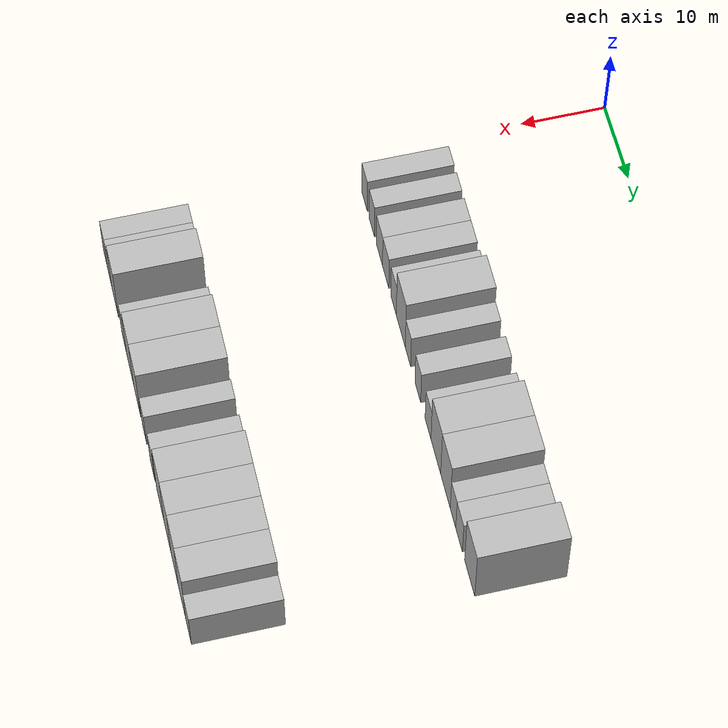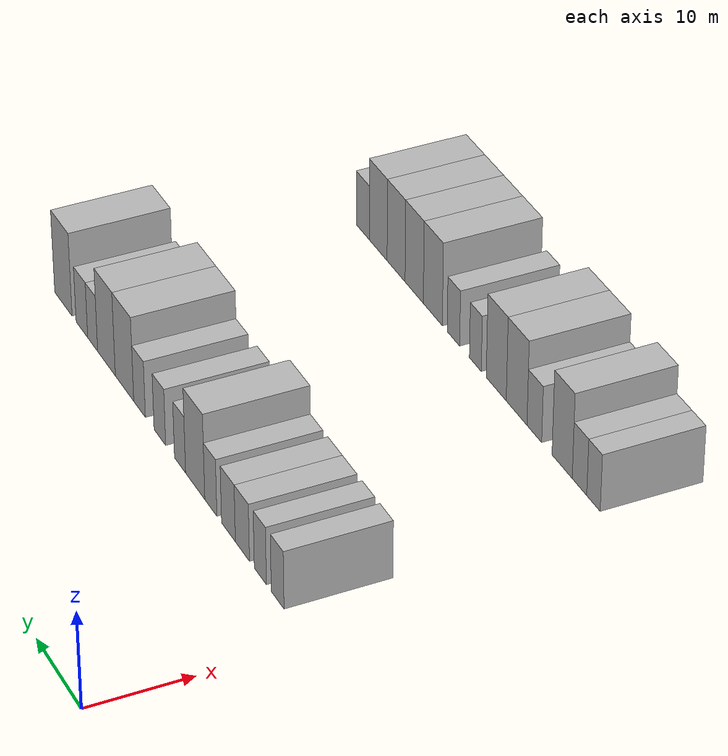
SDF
<sdf version="1.6">
 <world name="default">
  <model name="building_54">
   <static>1</static>
   <pose>25.0000 6.2718 0 0.000000 0.000000 0.000000</pose>
   <link name="link">
    <pose>0 0 3.00 0 0 0</pose>
    <collision name="collision"><geometry><box><size>10.0000 2.6216 6.0000</size></box></geometry></collision>
    <visual name="visual">
     <cast_shadows>0</cast_shadows>
     <geometry><box><size>10.0000 2.6216 6.0000</size></box></geometry>
     <material>
      <script>
       <uri>model://HANNAS_wall/materials/scripts</uri>
       <uri>model://HANNAS_wall/materials/textures</uri>
       <name>vrc/HANNAS_wall</name>
      </script>
     </material>
    </visual>
   </link>
  </model>
  <model name="building_55">
   <static>1</static>
   <pose>25.0000 9.8416 0 0.000000 0.000000 0.000000</pose>
   <link name="link">
    <pose>0 0 3.00 0 0 0</pose>
    <collision name="collision"><geometry><box><size>10.0000 2.5180 6.0000</size></box></geometry></collision>
    <visual name="visual">
     <cast_shadows>0</cast_shadows>
     <geometry><box><size>10.0000 2.5180 6.0000</size></box></geometry>
     <material>
      <script>
       <uri>model://HANNAS_wall/materials/scripts</uri>
       <uri>model://HANNAS_wall/materials/textures</uri>
       <name>vrc/HANNAS_wall</name>
      </script>
     </material>
    </visual>
   </link>
  </model>
  <model name="building_56">
   <static>1</static>
   <pose>25.0000 13.5956 0 0.000000 0.000000 0.000000</pose>
   <link name="link">
    <pose>0 0 3.00 0 0 0</pose>
    <collision name="collision"><geometry><box><size>10.0000 2.9900 6.0000</size></box></geometry></collision>
    <visual name="visual">
     <cast_shadows>0</cast_shadows>
     <geometry><box><size>10.0000 2.9900 6.0000</size></box></geometry>
     <material>
      <script>
       <uri>model://HANNAS_wall/materials/scripts</uri>
       <uri>model://HANNAS_wall/materials/textures</uri>
       <name>vrc/HANNAS_wall</name>
      </script>
     </material>
    </visual>
   </link>
  </model>
  <model name="building_57">
   <static>1</static>
   <pose>25.0000 16.5697 0 0.000000 0.000000 0.000000</pose>
   <link name="link">
    <pose>0 0 3.00 0 0 0</pose>
    <collision name="collision"><geometry><box><size>10.0000 2.9582 6.0000</size></box></geometry></collision>
    <visual name="visual">
     <cast_shadows>0</cast_shadows>
     <geometry><box><size>10.0000 2.9582 6.0000</size></box></geometry>
     <material>
      <script>
       <uri>model://HANNAS_wall/materials/scripts</uri>
       <uri>model://HANNAS_wall/materials/textures</uri>
       <name>vrc/HANNAS_wall</name>
      </script>
     </material>
    </visual>
   </link>
  </model>
  <model name="building_58">
   <static>1</static>
   <pose>25.0000 20.3652 0 0.000000 0.000000 0.000000</pose>
   <link name="link">
    <pose>0 0 3.00 0 0 0</pose>
    <collision name="collision"><geometry><box><size>10.0000 2.6328 6.0000</size></box></geometry></collision>
    <visual name="visual">
     <cast_shadows>0</cast_shadows>
     <geometry><box><size>10.0000 2.6328 6.0000</size></box></geometry>
     <material>
      <script>
       <uri>model://HANNAS_wall/materials/scripts</uri>
       <uri>model://HANNAS_wall/materials/textures</uri>
       <name>vrc/HANNAS_wall</name>
      </script>
     </material>
    </visual>
   </link>
  </model>
  <model name="building_59">
   <static>1</static>
   <pose>25.0000 23.7992 0 0.000000 0.000000 0.000000</pose>
   <link name="link">
    <pose>0 0 4.50 0 0 0</pose>
    <collision name="collision"><geometry><box><size>10.0000 4.2353 9.0000</size></box></geometry></collision>
    <visual name="visual">
     <cast_shadows>0</cast_shadows>
     <geometry><box><size>10.0000 4.2353 9.0000</size></box></geometry>
     <material>
      <script>
       <uri>model://HANNAS_wall/materials/scripts</uri>
       <uri>model://HANNAS_wall/materials/textures</uri>
       <name>vrc/HANNAS_wall</name>
      </script>
     </material>
    </visual>
   </link>
  </model>
  <model name="building_60">
   <static>1</static>
   <pose>25.0000 27.1506 0 0.000000 0.000000 0.000000</pose>
   <link name="link">
    <pose>0 0 3.00 0 0 0</pose>
    <collision name="collision"><geometry><box><size>10.0000 2.4674 6.0000</size></box></geometry></collision>
    <visual name="visual">
     <cast_shadows>0</cast_shadows>
     <geometry><box><size>10.0000 2.4674 6.0000</size></box></geometry>
     <material>
      <script>
       <uri>model://HANNAS_wall/materials/scripts</uri>
       <uri>model://HANNAS_wall/materials/textures</uri>
       <name>vrc/HANNAS_wall</name>
      </script>
     </material>
    </visual>
   </link>
  </model>
  <model name="building_61">
   <static>1</static>
   <pose>25.0000 31.7024 0 0.000000 0.000000 0.000000</pose>
   <link name="link">
    <pose>0 0 3.00 0 0 0</pose>
    <collision name="collision"><geometry><box><size>10.0000 2.6361 6.0000</size></box></geometry></collision>
    <visual name="visual">
     <cast_shadows>0</cast_shadows>
     <geometry><box><size>10.0000 2.6361 6.0000</size></box></geometry>
     <material>
      <script>
       <uri>model://HANNAS_wall/materials/scripts</uri>
       <uri>model://HANNAS_wall/materials/textures</uri>
       <name>vrc/HANNAS_wall</name>
      </script>
     </material>
    </visual>
   </link>
  </model>
  <model name="building_62">
   <static>1</static>
   <pose>25.0000 36.3706 0 0.000000 0.000000 0.000000</pose>
   <link name="link">
    <pose>0 0 3.00 0 0 0</pose>
    <collision name="collision"><geometry><box><size>10.0000 2.7004 6.0000</size></box></geometry></collision>
    <visual name="visual">
     <cast_shadows>0</cast_shadows>
     <geometry><box><size>10.0000 2.7004 6.0000</size></box></geometry>
     <material>
      <script>
       <uri>model://HANNAS_wall/materials/scripts</uri>
       <uri>model://HANNAS_wall/materials/textures</uri>
       <name>vrc/HANNAS_wall</name>
      </script>
     </material>
    </visual>
   </link>
  </model>
  <model name="building_63">
   <static>1</static>
   <pose>25.0000 39.8897 0 0.000000 0.000000 0.000000</pose>
   <link name="link">
    <pose>0 0 4.50 0 0 0</pose>
    <collision name="collision"><geometry><box><size>10.0000 4.3378 9.0000</size></box></geometry></collision>
    <visual name="visual">
     <cast_shadows>0</cast_shadows>
     <geometry><box><size>10.0000 4.3378 9.0000</size></box></geometry>
     <material>
      <script>
       <uri>model://HANNAS_wall/materials/scripts</uri>
       <uri>model://HANNAS_wall/materials/textures</uri>
       <name>vrc/HANNAS_wall</name>
      </script>
     </material>
    </visual>
   </link>
  </model>
  <model name="building_64">
   <static>1</static>
   <pose>25.0000 44.1730 0 0.000000 0.000000 0.000000</pose>
   <link name="link">
    <pose>0 0 4.50 0 0 0</pose>
    <collision name="collision"><geometry><box><size>10.0000 4.2289 9.0000</size></box></geometry></collision>
    <visual name="visual">
     <cast_shadows>0</cast_shadows>
     <geometry><box><size>10.0000 4.2289 9.0000</size></box></geometry>
     <material>
      <script>
       <uri>model://HANNAS_wall/materials/scripts</uri>
       <uri>model://HANNAS_wall/materials/textures</uri>
       <name>vrc/HANNAS_wall</name>
      </script>
     </material>
    </visual>
   </link>
  </model>
  <model name="building_65">
   <static>1</static>
   <pose>25.0000 47.4939 0 0.000000 0.000000 0.000000</pose>
   <link name="link">
    <pose>0 0 3.00 0 0 0</pose>
    <collision name="collision"><geometry><box><size>10.0000 2.4128 6.0000</size></box></geometry></collision>
    <visual name="visual">
     <cast_shadows>0</cast_shadows>
     <geometry><box><size>10.0000 2.4128 6.0000</size></box></geometry>
     <material>
      <script>
       <uri>model://HANNAS_wall/materials/scripts</uri>
       <uri>model://HANNAS_wall/materials/textures</uri>
       <name>vrc/HANNAS_wall</name>
      </script>
     </material>
    </visual>
   </link>
  </model>
  <model name="building_66">
   <static>1</static>
   <pose>25.0000 50.1245 0 0.000000 0.000000 0.000000</pose>
   <link name="link">
    <pose>0 0 3.00 0 0 0</pose>
    <collision name="collision"><geometry><box><size>10.0000 2.8485 6.0000</size></box></geometry></collision>
    <visual name="visual">
     <cast_shadows>0</cast_shadows>
     <geometry><box><size>10.0000 2.8485 6.0000</size></box></geometry>
     <material>
      <script>
       <uri>model://HANNAS_wall/materials/scripts</uri>
       <uri>model://HANNAS_wall/materials/textures</uri>
       <name>vrc/HANNAS_wall</name>
      </script>
     </material>
    </visual>
   </link>
  </model>
  <model name="building_67">
   <static>1</static>
   <pose>25.0000 54.7061 0 0.000000 0.000000 0.000000</pose>
   <link name="link">
    <pose>0 0 4.50 0 0 0</pose>
    <collision name="collision"><geometry><box><size>10.0000 4.3147 9.0000</size></box></geometry></collision>
    <visual name="visual">
     <cast_shadows>0</cast_shadows>
     <geometry><box><size>10.0000 4.3147 9.0000</size></box></geometry>
     <material>
      <script>
       <uri>model://HANNAS_wall/materials/scripts</uri>
       <uri>model://HANNAS_wall/materials/textures</uri>
       <name>vrc/HANNAS_wall</name>
      </script>
     </material>
    </visual>
   </link>
  </model>
  <model name="building_167">
   <static>1</static>
   <pose>55.0000 7.0812 0 0.000000 0.000000 0.000000</pose>
   <link name="link">
    <pose>0 0 3.00 0 0 0</pose>
    <collision name="collision"><geometry><box><size>10.0000 2.5024 6.0000</size></box></geometry></collision>
    <visual name="visual">
     <cast_shadows>0</cast_shadows>
     <geometry><box><size>10.0000 2.5024 6.0000</size></box></geometry>
     <material>
      <script>
       <uri>model://HANNAS_wall/materials/scripts</uri>
       <uri>model://HANNAS_wall/materials/textures</uri>
       <name>vrc/HANNAS_wall</name>
      </script>
     </material>
    </visual>
   </link>
  </model>
  <model name="building_168">
   <static>1</static>
   <pose>55.0000 9.6940 0 0.000000 0.000000 0.000000</pose>
   <link name="link">
    <pose>0 0 3.00 0 0 0</pose>
    <collision name="collision"><geometry><box><size>10.0000 2.7231 6.0000</size></box></geometry></collision>
    <visual name="visual">
     <cast_shadows>0</cast_shadows>
     <geometry><box><size>10.0000 2.7231 6.0000</size></box></geometry>
     <material>
      <script>
       <uri>model://HANNAS_wall/materials/scripts</uri>
       <uri>model://HANNAS_wall/materials/textures</uri>
       <name>vrc/HANNAS_wall</name>
      </script>
     </material>
    </visual>
   </link>
  </model>
  <model name="building_169">
   <static>1</static>
   <pose>55.0000 12.9704 0 0.000000 0.000000 0.000000</pose>
   <link name="link">
    <pose>0 0 4.50 0 0 0</pose>
    <collision name="collision"><geometry><box><size>10.0000 3.8297 9.0000</size></box></geometry></collision>
    <visual name="visual">
     <cast_shadows>0</cast_shadows>
     <geometry><box><size>10.0000 3.8297 9.0000</size></box></geometry>
     <material>
      <script>
       <uri>model://HANNAS_wall/materials/scripts</uri>
       <uri>model://HANNAS_wall/materials/textures</uri>
       <name>vrc/HANNAS_wall</name>
      </script>
     </material>
    </visual>
   </link>
  </model>
  <model name="building_170">
   <static>1</static>
   <pose>55.0000 18.3122 0 0.000000 0.000000 0.000000</pose>
   <link name="link">
    <pose>0 0 3.00 0 0 0</pose>
    <collision name="collision"><geometry><box><size>10.0000 2.8538 6.0000</size></box></geometry></collision>
    <visual name="visual">
     <cast_shadows>0</cast_shadows>
     <geometry><box><size>10.0000 2.8538 6.0000</size></box></geometry>
     <material>
      <script>
       <uri>model://HANNAS_wall/materials/scripts</uri>
       <uri>model://HANNAS_wall/materials/textures</uri>
       <name>vrc/HANNAS_wall</name>
      </script>
     </material>
    </visual>
   </link>
  </model>
  <model name="building_171">
   <static>1</static>
   <pose>55.0000 21.7813 0 0.000000 0.000000 0.000000</pose>
   <link name="link">
    <pose>0 0 4.50 0 0 0</pose>
    <collision name="collision"><geometry><box><size>10.0000 4.0845 9.0000</size></box></geometry></collision>
    <visual name="visual">
     <cast_shadows>0</cast_shadows>
     <geometry><box><size>10.0000 4.0845 9.0000</size></box></geometry>
     <material>
      <script>
       <uri>model://HANNAS_wall/materials/scripts</uri>
       <uri>model://HANNAS_wall/materials/textures</uri>
       <name>vrc/HANNAS_wall</name>
      </script>
     </material>
    </visual>
   </link>
  </model>
  <model name="building_172">
   <static>1</static>
   <pose>55.0000 25.8272 0 0.000000 0.000000 0.000000</pose>
   <link name="link">
    <pose>0 0 4.50 0 0 0</pose>
    <collision name="collision"><geometry><box><size>10.0000 4.0073 9.0000</size></box></geometry></collision>
    <visual name="visual">
     <cast_shadows>0</cast_shadows>
     <geometry><box><size>10.0000 4.0073 9.0000</size></box></geometry>
     <material>
      <script>
       <uri>model://HANNAS_wall/materials/scripts</uri>
       <uri>model://HANNAS_wall/materials/textures</uri>
       <name>vrc/HANNAS_wall</name>
      </script>
     </material>
    </visual>
   </link>
  </model>
  <model name="building_173">
   <static>1</static>
   <pose>55.0000 30.0411 0 0.000000 0.000000 0.000000</pose>
   <link name="link">
    <pose>0 0 3.00 0 0 0</pose>
    <collision name="collision"><geometry><box><size>10.0000 2.4204 6.0000</size></box></geometry></collision>
    <visual name="visual">
     <cast_shadows>0</cast_shadows>
     <geometry><box><size>10.0000 2.4204 6.0000</size></box></geometry>
     <material>
      <script>
       <uri>model://HANNAS_wall/materials/scripts</uri>
       <uri>model://HANNAS_wall/materials/textures</uri>
       <name>vrc/HANNAS_wall</name>
      </script>
     </material>
    </visual>
   </link>
  </model>
  <model name="building_174">
   <static>1</static>
   <pose>55.0000 34.5449 0 0.000000 0.000000 0.000000</pose>
   <link name="link">
    <pose>0 0 3.00 0 0 0</pose>
    <collision name="collision"><geometry><box><size>10.0000 2.5872 6.0000</size></box></geometry></collision>
    <visual name="visual">
     <cast_shadows>0</cast_shadows>
     <geometry><box><size>10.0000 2.5872 6.0000</size></box></geometry>
     <material>
      <script>
       <uri>model://HANNAS_wall/materials/scripts</uri>
       <uri>model://HANNAS_wall/materials/textures</uri>
       <name>vrc/HANNAS_wall</name>
      </script>
     </material>
    </visual>
   </link>
  </model>
  <model name="building_175">
   <static>1</static>
   <pose>55.0000 38.8420 0 0.000000 0.000000 0.000000</pose>
   <link name="link">
    <pose>0 0 4.50 0 0 0</pose>
    <collision name="collision"><geometry><box><size>10.0000 4.0071 9.0000</size></box></geometry></collision>
    <visual name="visual">
     <cast_shadows>0</cast_shadows>
     <geometry><box><size>10.0000 4.0071 9.0000</size></box></geometry>
     <material>
      <script>
       <uri>model://HANNAS_wall/materials/scripts</uri>
       <uri>model://HANNAS_wall/materials/textures</uri>
       <name>vrc/HANNAS_wall</name>
      </script>
     </material>
    </visual>
   </link>
  </model>
  <model name="building_176">
   <static>1</static>
   <pose>55.0000 42.8080 0 0.000000 0.000000 0.000000</pose>
   <link name="link">
    <pose>0 0 4.50 0 0 0</pose>
    <collision name="collision"><geometry><box><size>10.0000 3.9250 9.0000</size></box></geometry></collision>
    <visual name="visual">
     <cast_shadows>0</cast_shadows>
     <geometry><box><size>10.0000 3.9250 9.0000</size></box></geometry>
     <material>
      <script>
       <uri>model://HANNAS_wall/materials/scripts</uri>
       <uri>model://HANNAS_wall/materials/textures</uri>
       <name>vrc/HANNAS_wall</name>
      </script>
     </material>
    </visual>
   </link>
  </model>
  <model name="building_177">
   <static>1</static>
   <pose>55.0000 46.7187 0 0.000000 0.000000 0.000000</pose>
   <link name="link">
    <pose>0 0 4.50 0 0 0</pose>
    <collision name="collision"><geometry><box><size>10.0000 3.8964 9.0000</size></box></geometry></collision>
    <visual name="visual">
     <cast_shadows>0</cast_shadows>
     <geometry><box><size>10.0000 3.8964 9.0000</size></box></geometry>
     <material>
      <script>
       <uri>model://HANNAS_wall/materials/scripts</uri>
       <uri>model://HANNAS_wall/materials/textures</uri>
       <name>vrc/HANNAS_wall</name>
      </script>
     </material>
    </visual>
   </link>
  </model>
  <model name="building_178">
   <static>1</static>
   <pose>55.0000 50.6401 0 0.000000 0.000000 0.000000</pose>
   <link name="link">
    <pose>0 0 4.50 0 0 0</pose>
    <collision name="collision"><geometry><box><size>10.0000 3.9464 9.0000</size></box></geometry></collision>
    <visual name="visual">
     <cast_shadows>0</cast_shadows>
     <geometry><box><size>10.0000 3.9464 9.0000</size></box></geometry>
     <material>
      <script>
       <uri>model://HANNAS_wall/materials/scripts</uri>
       <uri>model://HANNAS_wall/materials/textures</uri>
       <name>vrc/HANNAS_wall</name>
      </script>
     </material>
    </visual>
   </link>
  </model>
  <model name="building_179">
   <static>1</static>
   <pose>55.0000 54.0533 0 0.000000 0.000000 0.000000</pose>
   <link name="link">
    <pose>0 0 3.00 0 0 0</pose>
    <collision name="collision"><geometry><box><size>10.0000 2.8799 6.0000</size></box></geometry></collision>
    <visual name="visual">
     <cast_shadows>0</cast_shadows>
     <geometry><box><size>10.0000 2.8799 6.0000</size></box></geometry>
     <material>
      <script>
       <uri>model://HANNAS_wall/materials/scripts</uri>
       <uri>model://HANNAS_wall/materials/textures</uri>
       <name>vrc/HANNAS_wall</name>
      </script>
     </material>
    </visual>
   </link>
  </model>
 </world>
</sdf>
